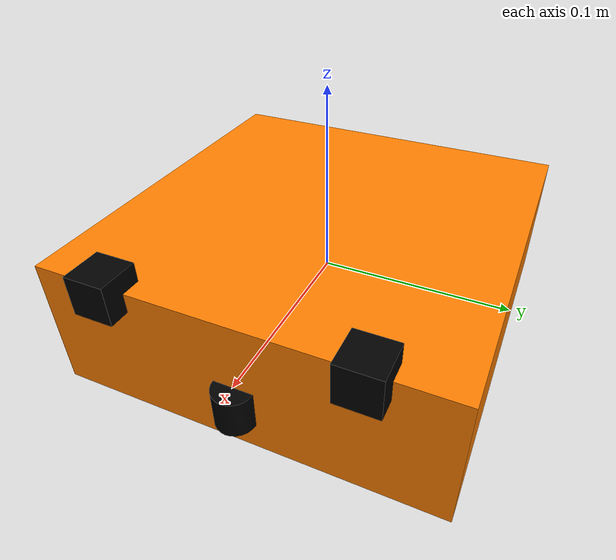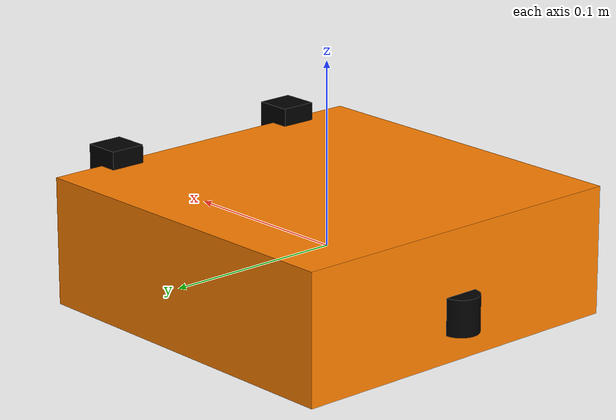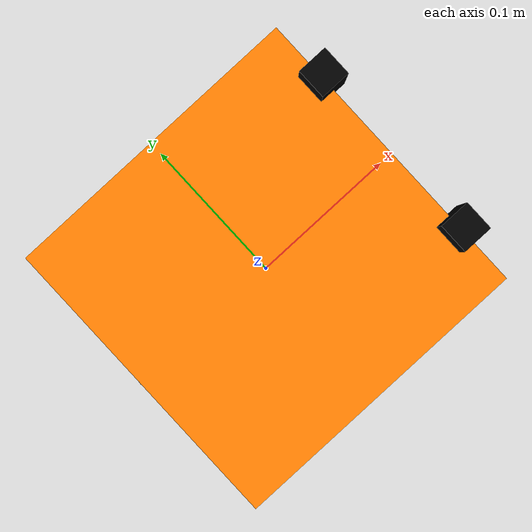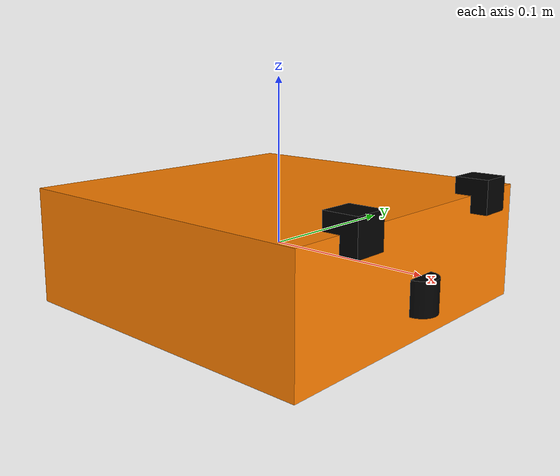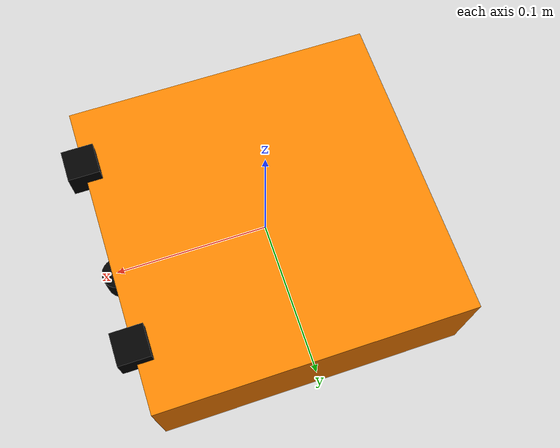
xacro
<?xml version="1.0"?>
<robot xmlns:xacro="http://www.ros.org/wiki/xacro" name="rescue_drone">

  <!-- Materials -->
  <material name="black">
    <color rgba="0.0 0.0 0.0 1.0"/>
  </material>
  <material name="orange">
    <color rgba="1.0 0.5 0.0 1.0"/>
  </material>

  <!-- Base Link (Body) -->
  <link name="base_link">
    <inertial>
      <mass value="0.8"/>
      <origin xyz="0 0 0" rpy="0 0 0"/>
      <inertia ixx="0.005" ixy="0" ixz="0" iyy="0.005" iyz="0" izz="0.01"/>
    </inertial>
    <visual>
      <geometry>
        <box size="0.2 0.2 0.07"/>
      </geometry>
      <material name="orange"/>
    </visual>
    <collision name="base_link_collision">
      <geometry>
        <box size="0.2 0.2 0.07"/>
      </geometry>
    </collision>
  </link>

  <!-- Gazebo settings for Base Link: visual, bumper sensor, gravity -->
  <gazebo reference="base_link">
    <material>Gazebo/Grey</material>
    <gravity>0</gravity>
    <visual>
      <material>
        <ambient>1.0 0.5 0.0 1.0</ambient>
        <diffuse>1.0 0.5 0.0 1.0</diffuse>
        <specular>0.1 0.1 0.1 1.0</specular>
        <emissive>0.0 0.0 0.0 0.0</emissive>
      </material>
    </visual>
    <sensor name="drone_bumper" type="contact">
      <always_on>true</always_on>
      <update_rate>50.0</update_rate>
      <contact>
        <collision>base_link_collision</collision>
      </contact>
      <plugin name="drone_bumper_plugin" filename="libgazebo_ros_bumper.so">
        <ros>
          <remapping>bumper_states:=/drone/collisions</remapping>
        </ros>
        <frame_name>base_link</frame_name>
      </plugin>
    </sensor>
  </gazebo>

  <!-- Dummy root link to fix KDL warning and improve stability -->
  <link name="base_footprint"/>
  <joint name="base_joint" type="fixed">
    <parent link="base_footprint"/>
    <child link="base_link"/>
    <origin xyz="0 0 0" rpy="0 0 0"/>
  </joint>

  <!-- Movement Plugin -->
  <gazebo>
    <plugin name="drone_move_controller" filename="libgazebo_ros_planar_move.so">
      <ros>
        <remapping>cmd_vel:=/cmd_vel</remapping>
        <remapping>odom:=/odom</remapping>
      </ros>
      <update_rate>200</update_rate>  <!-- Matching MAVRL (was 50) -->
      <publish_odom>true</publish_odom>
      <publish_odom_tf>true</publish_odom_tf>
      <odometry_frame>odom</odometry_frame>
      <robot_base_frame>base_footprint</robot_base_frame>
    </plugin>
  </gazebo>

  <!-- Sensors -->
  <!-- Stereo Camera Base -->
  <link name="camera_link"/>
  <joint name="camera_joint" type="fixed">
    <parent link="base_link"/>
    <child link="camera_link"/>
    <origin xyz="0.1 0 0.035" rpy="0 0 0"/>
  </joint>

  <!-- Left Camera -->
  <link name="camera_left_link">
    <visual>
      <geometry>
        <box size="0.02 0.02 0.02"/>
      </geometry>
      <material name="black"/>
    </visual>
  </link>

  <joint name="camera_left_joint" type="fixed">
    <parent link="camera_link"/>
    <child link="camera_left_link"/>
    <origin xyz="0 0.06 0" rpy="0 0 0"/>
  </joint>

  <!-- Right Camera -->
  <link name="camera_right_link">
    <visual>
      <geometry>
        <box size="0.02 0.02 0.02"/>
      </geometry>
      <material name="black"/>
    </visual>
  </link>

  <joint name="camera_right_joint" type="fixed">
    <parent link="camera_link"/>
    <child link="camera_right_link"/>
    <origin xyz="0 -0.06 0" rpy="0 0 0"/>
  </joint>

  <!-- IMU -->
  <link name="imu_link"/>
  <joint name="imu_joint" type="fixed">
    <parent link="base_link"/>
    <child link="imu_link"/>
    <origin xyz="0 0 0" rpy="0 0 0"/>
  </joint>

  <!-- dToF (Range) -->
  <link name="dtof_link">
    <visual>
      <geometry>
        <cylinder length="0.02" radius="0.01"/>
      </geometry>
      <material name="black"/>
    </visual>
  </link>

  <joint name="dtof_joint" type="fixed">
    <parent link="base_link"/>
    <child link="dtof_link"/>
    <origin xyz="0.1 0 -0.01" rpy="0 0 0"/>
  </joint>

  <!-- dToF Back (Range) -->
  <link name="dtof_back_link">
    <visual>
      <geometry>
        <cylinder length="0.02" radius="0.01"/>
      </geometry>
      <material name="black"/>
    </visual>
  </link>

  <joint name="dtof_back_joint" type="fixed">
    <parent link="base_link"/>
    <child link="dtof_back_link"/>
    <origin xyz="-0.1 0 -0.01" rpy="0 0 3.14159"/>
  </joint>

  <!-- Gazebo Plugins for Sensors -->
  <!-- Left Camera -->
  <gazebo reference="camera_left_link">
    <sensor type="camera" name="left_camera">
      <always_on>true</always_on>
      <update_rate>20.0</update_rate>
      <camera name="left">
        <horizontal_fov>1.3962634</horizontal_fov>
        <image>
          <width>320</width>
          <height>240</height>
          <format>R8G8B8</format>
        </image>
        <clip>
          <near>0.02</near>
          <far>15</far>
        </clip>
      </camera>
      <plugin name="left_camera_controller" filename="libgazebo_ros_camera.so">
        <ros>
          <remapping>image_raw:=/left/image_raw</remapping>
          <remapping>camera_info:=/left/camera_info</remapping>
        </ros>
        <camera_name>left</camera_name>
        <frame_name>camera_left_link</frame_name>
      </plugin>
    </sensor>
  </gazebo>

  <!-- Right Camera -->
  <gazebo reference="camera_right_link">
    <sensor type="camera" name="right_camera">
      <always_on>true</always_on>
      <update_rate>20.0</update_rate>
      <camera name="right">
        <horizontal_fov>1.3962634</horizontal_fov>
        <image>
          <width>320</width>
          <height>240</height>
          <format>R8G8B8</format>
        </image>
        <clip>
          <near>0.02</near>
          <far>15</far>
        </clip>
      </camera>
      <plugin name="right_camera_controller" filename="libgazebo_ros_camera.so">
        <ros>
          <remapping>image_raw:=/right/image_raw</remapping>
          <remapping>camera_info:=/right/camera_info</remapping>
        </ros>
        <camera_name>right</camera_name>
        <frame_name>camera_right_link</frame_name>
        <hack_baseline>0.12</hack_baseline>
      </plugin>
    </sensor>
  </gazebo>

  <gazebo reference="imu_link">
    <sensor name="imu_sensor" type="imu">
      <always_on>true</always_on>
      <update_rate>100</update_rate>
      <visualize>true</visualize>
      <plugin name="imu_plugin" filename="libgazebo_ros_imu_sensor.so">
        <ros>
          <remapping>~/out:=/imu/data</remapping>
        </ros>
      </plugin>
    </sensor>
  </gazebo>

  <gazebo reference="dtof_link">
    <sensor type="ray" name="dtof_sensor">
      <visualize>true</visualize>
      <update_rate>20</update_rate>
      <ray>
        <scan>
          <horizontal>
            <samples>1</samples>
            <resolution>1</resolution>
            <min_angle>0</min_angle>
            <max_angle>0</max_angle>
          </horizontal>
        </scan>
        <range>
          <min>0.10</min>
          <max>10.0</max>
          <resolution>0.01</resolution>
        </range>
      </ray>
      <plugin name="dtof_controller" filename="libgazebo_ros_ray_sensor.so">
        <ros>
          <remapping>~/out:=/sensor/dtof_range</remapping>
        </ros>
        <output_type>sensor_msgs/Range</output_type>
        <frame_name>dtof_link</frame_name>
      </plugin>
    </sensor>
  </gazebo>

  <gazebo reference="dtof_back_link">
    <sensor type="ray" name="dtof_back_sensor">
      <visualize>true</visualize>
      <update_rate>20</update_rate>
      <ray>
        <scan>
          <horizontal>
            <samples>1</samples>
            <resolution>1</resolution>
            <min_angle>0</min_angle>
            <max_angle>0</max_angle>
          </horizontal>
        </scan>
        <range>
          <min>0.10</min>
          <max>10.0</max>
          <resolution>0.01</resolution>
        </range>
      </ray>
      <plugin name="dtof_back_controller" filename="libgazebo_ros_ray_sensor.so">
        <ros>
          <remapping>~/out:=/sensor/dtof_back_range</remapping>
        </ros>
        <output_type>sensor_msgs/Range</output_type>
        <frame_name>dtof_back_link</frame_name>
      </plugin>
    </sensor>
  </gazebo>

</robot>
